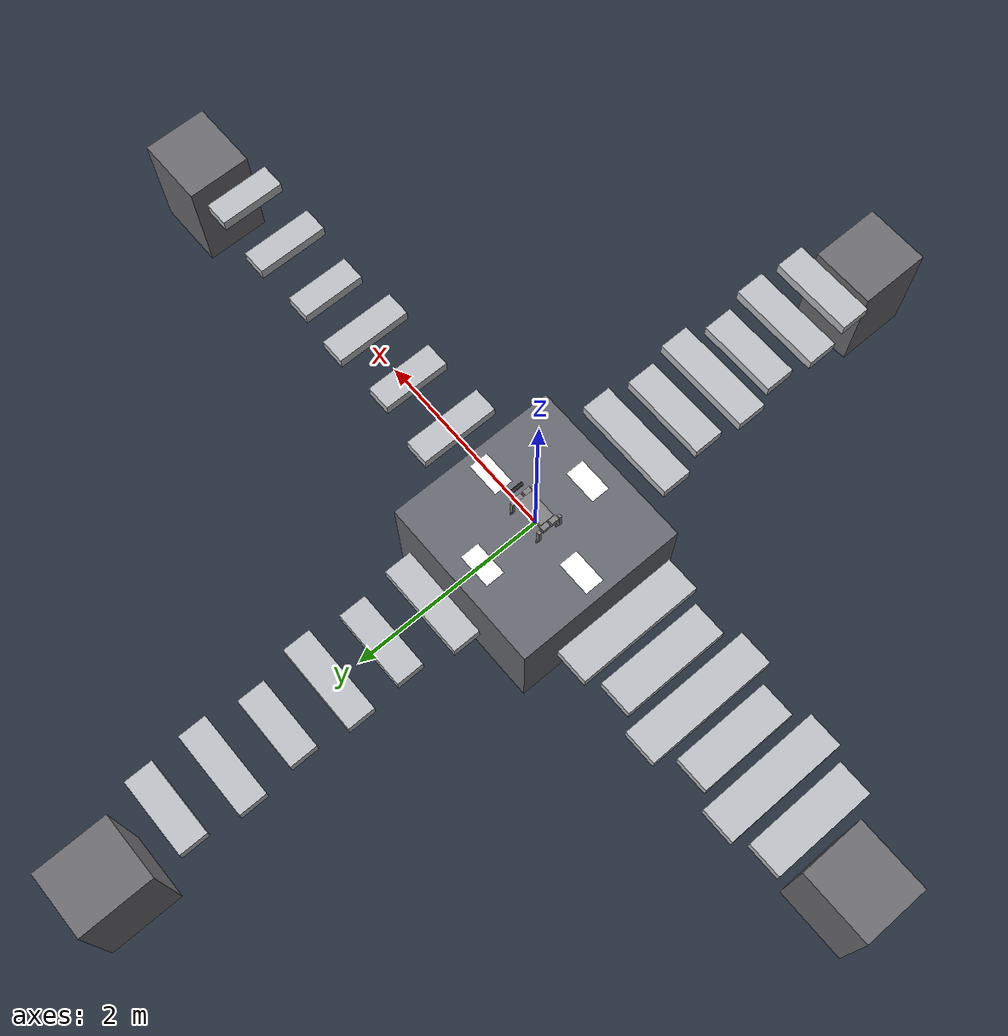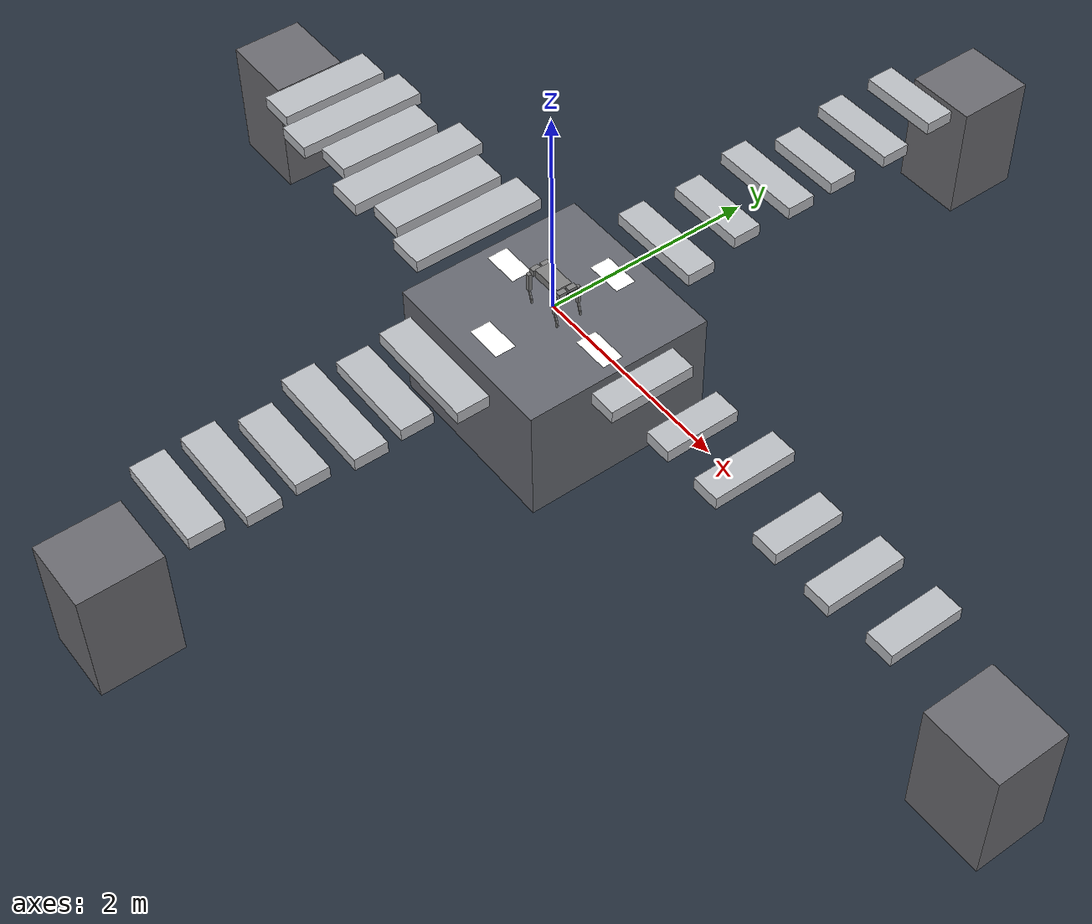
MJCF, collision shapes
<mujoco model="air_beams_cross_1_4_7_10">
  <include file="dog_502.xml"/>
  <!-- Terrain: Cross Air Beams.
       Difficulty changes beam length, spacing, width, and height, following
       the gym-side air_beams trend. -->
  <statistic center="0 0 0.18" extent="1.0" />
  <visual>
    <headlight diffuse="0.6 0.6 0.6" ambient="0.3 0.3 0.3" specular="0 0 0" />
    <rgba haze="0.15 0.25 0.35 1" />
    <global azimuth="-130" elevation="-20" />
  </visual>
  <asset>
    <texture type="skybox" builtin="gradient" rgb1="0.3 0.5 0.7" rgb2="0 0 0" width="512" height="3072" />
    <texture type="2d" name="groundplane" builtin="checker" mark="edge" rgb1="0.18 0.22 0.28" rgb2="0.10 0.14 0.18" markrgb="0.8 0.8 0.8" width="300" height="300" />
    <material name="groundplane" texture="groundplane" texuniform="true" texrepeat="5 5" reflectance="0.0" />
    <texture name="tex_label_1" type="2d" file="./imgs/label_1.png" />
    <material name="mat_label_1" texture="tex_label_1" specular="0" shininess="0" emission="1" texrepeat="1 1" rgba="1 1 1 1" />
    <texture name="tex_label_7" type="2d" file="./imgs/label_7.png" />
    <material name="mat_label_7" texture="tex_label_7" specular="0" shininess="0" emission="1" texrepeat="1 1" rgba="1 1 1 1" />
    <texture name="tex_label_10" type="2d" file="./imgs/label_10.png" />
    <material name="mat_label_10" texture="tex_label_10" specular="0" shininess="0" emission="1" texrepeat="1 1" rgba="1 1 1 1" />
    <texture name="tex_label_4" type="2d" file="./imgs/label_4.png" />
    <material name="mat_label_4" texture="tex_label_4" specular="0" shininess="0" emission="1" texrepeat="1 1" rgba="1 1 1 1" />
  </asset>
  <worldbody>
    <light pos="0 0 1.5" dir="0 0 -1" directional="true" />

    <geom name="pit_floor" pos="0 0 -1.25" size="20 20 0.10" type="box" material="groundplane" />
    <geom name="hub" pos="0 0 -0.60" type="box" size="0.90 0.90 0.60" rgba="0.40 0.41 0.44 1" />

    <!-- neg_x direction, level 1, difficulty=0.1, air_beams -->
    <geom name="neg_x_beam_1" pos="-1.225 0 0.02" type="box" size="0.175 0.65 0.06" rgba="0.73 0.74 0.76 1" />
    <geom name="neg_x_beam_2" pos="-1.675 0 0.02" type="box" size="0.175 0.55 0.06" rgba="0.73 0.74 0.76 1" />
    <geom name="neg_x_beam_3" pos="-2.125 0 0.02" type="box" size="0.175 0.675 0.06" rgba="0.73 0.74 0.76 1" />
    <geom name="neg_x_beam_4" pos="-2.575 0 0.02" type="box" size="0.175 0.5 0.06" rgba="0.73 0.74 0.76 1" />
    <geom name="neg_x_beam_5" pos="-3.025 0 0.02" type="box" size="0.175 0.625 0.06" rgba="0.73 0.74 0.76 1" />
    <geom name="neg_x_beam_6" pos="-3.475 0 0.02" type="box" size="0.175 0.525 0.06" rgba="0.73 0.74 0.76 1" />
    <geom name="neg_x_landing" pos="-4.125 0 -0.6" type="box" size="0.375 0.34 0.6" rgba="0.42 0.42 0.44 1" />
    <geom name="neg_x_label" pos="-0.62 0 0.002" type="box" size="0.18 0.10 0.0001" contype="0" conaffinity="0" group="1" material="mat_label_1" rgba="1 1 1 1" />

    <!-- pos_y direction, level 7, difficulty=0.7, air_beams -->
    <geom name="pos_y_beam_1" pos="0 1.19 0.04" type="box" size="0.475 0.14 0.06" rgba="0.73 0.74 0.76 1" />
    <geom name="pos_y_beam_2" pos="0 1.75 0.09" type="box" size="0.4 0.14 0.06" rgba="0.73 0.74 0.76 1" />
    <geom name="pos_y_beam_3" pos="0 2.31 0.15" type="box" size="0.45 0.14 0.06" rgba="0.73 0.74 0.76 1" />
    <geom name="pos_y_beam_4" pos="0 2.87 0.07" type="box" size="0.37 0.14 0.06" rgba="0.73 0.74 0.76 1" />
    <geom name="pos_y_beam_5" pos="0 3.43 0.12" type="box" size="0.43 0.14 0.06" rgba="0.73 0.74 0.76 1" />
    <geom name="pos_y_beam_6" pos="0 3.99 0.18" type="box" size="0.39 0.14 0.06" rgba="0.73 0.74 0.76 1" />
    <geom name="pos_y_landing" pos="0 4.785 -0.6" type="box" size="0.34 0.375 0.6" rgba="0.42 0.42 0.44 1" />
    <geom name="pos_y_label" pos="0 0.62 0.002" type="box" size="0.10 0.18 0.0001" quat="0.7071067811865476 0 0 0.7071067811865475" contype="0" conaffinity="0" group="1" material="mat_label_7" rgba="1 1 1 1" />

    <!-- pos_x direction, level 10, difficulty=0.9, air_beams -->
    <geom name="pos_x_beam_1" pos="1.18 0 0.06" type="box" size="0.13 0.41 0.06" rgba="0.73 0.74 0.76 1" />
    <geom name="pos_x_beam_2" pos="1.8 0 0.12" type="box" size="0.13 0.35 0.06" rgba="0.73 0.74 0.76 1" />
    <geom name="pos_x_beam_3" pos="2.42 0 0.18" type="box" size="0.13 0.39 0.06" rgba="0.73 0.74 0.76 1" />
    <geom name="pos_x_beam_4" pos="3.04 0 0.09" type="box" size="0.13 0.33 0.06" rgba="0.73 0.74 0.76 1" />
    <geom name="pos_x_beam_5" pos="3.66 0 0.15" type="box" size="0.13 0.37 0.06" rgba="0.73 0.74 0.76 1" />
    <geom name="pos_x_beam_6" pos="4.28 0 0.21" type="box" size="0.13 0.34 0.06" rgba="0.73 0.74 0.76 1" />
    <geom name="pos_x_landing" pos="5.145 0 -0.6" type="box" size="0.375 0.34 0.6" rgba="0.42 0.42 0.44 1" />
    <geom name="pos_x_label" pos="0.62 0 0.002" type="box" size="0.18 0.10 0.0001" contype="0" conaffinity="0" group="1" material="mat_label_10" rgba="1 1 1 1" />

    <!-- neg_y direction, level 4, difficulty=0.4, air_beams -->
    <geom name="neg_y_beam_1" pos="0 -1.205 0.02" type="box" size="0.55 0.155 0.06" rgba="0.73 0.74 0.76 1" />
    <geom name="neg_y_beam_2" pos="0 -1.675 0.06" type="box" size="0.46 0.155 0.06" rgba="0.73 0.74 0.76 1" />
    <geom name="neg_y_beam_3" pos="0 -2.145 0.1" type="box" size="0.525 0.155 0.06" rgba="0.73 0.74 0.76 1" />
    <geom name="neg_y_beam_4" pos="0 -2.615 0.04" type="box" size="0.42 0.155 0.06" rgba="0.73 0.74 0.76 1" />
    <geom name="neg_y_beam_5" pos="0 -3.085 0.08" type="box" size="0.49 0.155 0.06" rgba="0.73 0.74 0.76 1" />
    <geom name="neg_y_beam_6" pos="0 -3.555 0.12" type="box" size="0.44 0.155 0.06" rgba="0.73 0.74 0.76 1" />
    <geom name="neg_y_landing" pos="0 -4.245 -0.6" type="box" size="0.34 0.375 0.6" rgba="0.42 0.42 0.44 1" />
    <geom name="neg_y_label" pos="0 -0.62 0.002" type="box" size="0.10 0.18 0.0001" quat="0.7071067811865476 0 0 -0.7071067811865475" contype="0" conaffinity="0" group="1" material="mat_label_4" rgba="1 1 1 1" />
  </worldbody>
</mujoco>

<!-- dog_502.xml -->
<mujoco model="dog_502_description">
  <compiler angle="radian" meshdir="../../../dog_502_description/meshes"/>

  <default>
    <joint damping="0.01" armature="0.01" frictionloss="0.02"/>
    <geom condim="3" friction="0.8 0.02 0.01"/>
    <default class="visual">
      <geom type="mesh" contype="0" conaffinity="0" group="2"/>
    </default>
  </default>

  <asset>
    <material name="light_grey" rgba="0.75294 0.75294 0.75294 1"/>
    <material name="black" rgba="0.1 0.1 0.1 1"/>
    <material name="red" rgba="1.0 0.0 0.0 1"/>

    <mesh name="base_link_mesh" file="base_link.STL"/>
    <mesh name="FL_hip_mesh" file="FL_hip.STL"/>
    <mesh name="FR_hip_mesh" file="FR_hip.STL"/>
    <mesh name="RL_hip_mesh" file="RL_hip.STL"/>
    <mesh name="RR_hip_mesh" file="RR_hip.STL"/>
    <mesh name="FL_thigh_mesh" file="FL_thigh.STL"/>
    <mesh name="FR_thigh_mesh" file="FR_thigh.STL"/>
    <mesh name="RL_thigh_mesh" file="RL_thigh.STL"/>
    <mesh name="RR_thigh_mesh" file="RR_thigh.STL"/>
    <mesh name="FL_calf_mesh" file="FL_calf.STL"/>
    <mesh name="FR_calf_mesh" file="FR_calf.STL"/>
    <mesh name="RL_calf_mesh" file="RL_calf.STL"/>
    <mesh name="RR_calf_mesh" file="RR_calf.STL"/>
  </asset>

  <worldbody>
    <body name="base" pos="0 0 0.31">
      <inertial pos="0.000037 0.001297 -0.002295" mass="4.142449" diaginertia="0.013374 0.031506 0.039388"/>
      <freejoint name="root"/>
      <geom mesh="base_link_mesh" material="light_grey" class="visual"/>
      <geom name="base_collision" type="box" size="0.15 0.075 0.04"/>

      <body name="camera" pos="0.255 0 0.04185" quat="0.984811 0 0.173672 0">
        <geom name="camera_visual" type="box" size="0.0125 0.06 0.0145" material="black" contype="0" conaffinity="0" group="2"/>
      </body>

      <body name="FL_hip" pos="0.1767 0.05 0">
        <inertial pos="-0.00457081 -0.00969999 0.0002578" mass="0.50149755" diaginertia="0.00011158 0.00021376 0.00016301"/>
        <joint name="FL_hip_joint" axis="1 0 0" range="-0.837758 0.837758" actuatorfrcrange="-17 17"/>
        <geom mesh="FL_hip_mesh" material="light_grey" class="visual"/>
        <geom name="FL_hip_collision" type="box" size="0.025 0.04 0.03"/>
        <body name="FL_thigh" pos="0 0.0684 0">
          <inertial pos="-0.00194747 -0.02547458 -0.01388663" mass="0.64867804" diaginertia="0.00138293 0.00137329 0.00032193"/>
          <joint name="FL_thigh_joint" axis="0 1 0" range="-1.5708 3.49066" actuatorfrcrange="-17 17"/>
          <geom mesh="FL_thigh_mesh" material="light_grey" class="visual"/>
          <geom name="FL_thigh_collision" type="box" pos="0 0 -0.09" quat="0.707107 0 0.707107 0" size="0.09 0.015 0.0175"/>
          <body name="FL_calf" pos="0 0 -0.18">
            <inertial pos="0.01310003 -0.00009903 -0.09935467" mass="0.06024443" diaginertia="0.0003599 0.00036988 0.00001166"/>
            <joint name="FL_calf_joint" axis="0 1 0" range="-2.72271 -0.837758" actuatorfrcrange="-17 17"/>
            <geom mesh="FL_calf_mesh" material="light_grey" class="visual"/>
            <geom name="FL_calf_collision_0" type="box" pos="0.013 0 -0.053" quat="0.988392 0 -0.151909 0" size="0.00825 0.0075 0.05106"/>
            <geom name="FL_calf_collision_1" type="box" pos="0.0285 0 -0.119" quat="0.997889 0 -0.064954 0" size="0.009 0.0075 0.03"/>
            <geom name="FL_calf_collision_2" type="box" pos="0.02021 0 -0.15878" quat="0.968912 0 0.247404 0" size="0.0125 0.0075 0.02"/>
            <geom name="FL_calf_collision_3" type="box" pos="0.03 0 -0.16" quat="0.998750 0 0.049979 0" size="0.01 0.0075 0.015"/>
            <body name="FL_foot" pos="0 0 -0.18">
              <inertial pos="0 0 0" mass="0.04" diaginertia="0.0000096 0.0000096 0.0000096"/>
              <geom name="FL_foot_visual" type="sphere" size="0.01" material="red" contype="0" conaffinity="0" group="2"/>
              <geom name="FL_foot_collision" type="sphere" pos="0.015 0 0" size="0.0225"/>
            </body>
          </body>
        </body>
      </body>

      <body name="FR_hip" pos="0.1767 -0.05 0">
        <inertial pos="-0.00444412 0.00969999 0.00054368" mass="0.50149755" diaginertia="0.00011122 0.00021421 0.00016383"/>
        <joint name="FR_hip_joint" axis="1 0 0" range="-0.837758 0.837758" actuatorfrcrange="-17 17"/>
        <geom mesh="FR_hip_mesh" material="light_grey" class="visual"/>
        <geom name="FR_hip_collision" type="box" size="0.025 0.04 0.03"/>
        <body name="FR_thigh" pos="0 -0.0684 0">
          <inertial pos="-0.00096707 0.02548196 -0.01388686" mass="0.64867934" diaginertia="0.00138275 0.00137516 0.00032358"/>
          <joint name="FR_thigh_joint" axis="0 1 0" range="-1.5708 3.49066" actuatorfrcrange="-17 17"/>
          <geom mesh="FR_thigh_mesh" material="light_grey" class="visual"/>
          <geom name="FR_thigh_collision" type="box" pos="0 0 -0.09" quat="0.707107 0 0.707107 0" size="0.09 0.015 0.0175"/>
          <body name="FR_calf" pos="0 0 -0.18">
            <inertial pos="0.01310003 0.00010097 -0.09935467" mass="0.06024443" diaginertia="0.0003599 0.00036988 0.00001166"/>
            <joint name="FR_calf_joint" axis="0 1 0" range="-2.72271 -0.837758" actuatorfrcrange="-17 17"/>
            <geom mesh="FR_calf_mesh" material="light_grey" class="visual"/>
            <geom name="FR_calf_collision_0" type="box" pos="0.013 0 -0.053" quat="0.988392 0 -0.151909 0" size="0.00825 0.0075 0.05106"/>
            <geom name="FR_calf_collision_1" type="box" pos="0.0285 0 -0.119" quat="0.997889 0 -0.064954 0" size="0.009 0.0075 0.03"/>
            <geom name="FR_calf_collision_2" type="box" pos="0.02021 0 -0.15878" quat="0.968912 0 0.247404 0" size="0.0125 0.0075 0.02"/>
            <geom name="FR_calf_collision_3" type="box" pos="0.03 0 -0.16" quat="0.998750 0 0.049979 0" size="0.01 0.0075 0.015"/>
            <body name="FR_foot" pos="0 0 -0.18">
              <inertial pos="0 0 0" mass="0.04" diaginertia="0.0000096 0.0000096 0.0000096"/>
              <geom name="FR_foot_visual" type="sphere" size="0.01" material="red" contype="0" conaffinity="0" group="2"/>
              <geom name="FR_foot_collision" type="sphere" pos="0.015 0 0" size="0.0225"/>
            </body>
          </body>
        </body>
      </body>

      <body name="RL_hip" pos="-0.1767 0.05 0">
        <inertial pos="0.00329874 -0.00969999 0.00094432" mass="0.50149755" diaginertia="0.00011271 0.00021836 0.00016649"/>
        <joint name="RL_hip_joint" axis="1 0 0" range="-0.837758 0.837758" actuatorfrcrange="-17 17"/>
        <geom mesh="RL_hip_mesh" material="light_grey" class="visual"/>
        <geom name="RL_hip_collision" type="box" size="0.025 0.04 0.03"/>
        <body name="RL_thigh" pos="0 0.0684 0">
          <inertial pos="-0.00120536 -0.02547458 -0.01523822" mass="0.64867804" diaginertia="0.00135600 0.00134928 0.00032485"/>
          <joint name="RL_thigh_joint" axis="0 1 0" range="-1.5708 3.49066" actuatorfrcrange="-17 17"/>
          <geom mesh="RL_thigh_mesh" material="light_grey" class="visual"/>
          <geom name="RL_thigh_collision" type="box" pos="0 0 -0.09" quat="0.707107 0 0.707107 0" size="0.09 0.015 0.0175"/>
          <body name="RL_calf" pos="0 0 -0.18">
            <inertial pos="0.01310003 -0.00009903 -0.09935467" mass="0.06024443" diaginertia="0.0003599 0.00036988 0.00001166"/>
            <joint name="RL_calf_joint" axis="0 1 0" range="-2.72271 -0.837758" actuatorfrcrange="-17 17"/>
            <geom mesh="RL_calf_mesh" material="light_grey" class="visual"/>
            <geom name="RL_calf_collision_0" type="box" pos="0.013 0 -0.053" quat="0.988392 0 -0.151909 0" size="0.00825 0.0075 0.05106"/>
            <geom name="RL_calf_collision_1" type="box" pos="0.0285 0 -0.119" quat="0.997889 0 -0.064954 0" size="0.009 0.0075 0.03"/>
            <geom name="RL_calf_collision_2" type="box" pos="0.02021 0 -0.15878" quat="0.968912 0 0.247404 0" size="0.0125 0.0075 0.02"/>
            <geom name="RL_calf_collision_3" type="box" pos="0.03 0 -0.16" quat="0.998750 0 0.049979 0" size="0.01 0.0075 0.015"/>
            <body name="RL_foot" pos="0 0 -0.18">
              <inertial pos="0 0 0" mass="0.04" diaginertia="0.0000096 0.0000096 0.0000096"/>
              <geom name="RL_foot_visual" type="sphere" size="0.01" material="red" contype="0" conaffinity="0" group="2"/>
              <geom name="RL_foot_collision" type="sphere" pos="0.015 0 0" size="0.0225"/>
            </body>
          </body>
        </body>
      </body>

      <body name="RR_hip" pos="-0.1767 -0.05 0">
        <inertial pos="0.00444412 0.00969999 -0.00054368" mass="0.50149755" diaginertia="0.00011122 0.00021421 0.00016383"/>
        <joint name="RR_hip_joint" axis="1 0 0" range="-0.837758 0.837758" actuatorfrcrange="-17 17"/>
        <geom mesh="RR_hip_mesh" material="light_grey" class="visual"/>
        <geom name="RR_hip_collision" type="box" size="0.025 0.04 0.03"/>
        <body name="RR_thigh" pos="0 -0.0684 0">
          <inertial pos="-0.00212669 0.02547451 -0.01490311" mass="0.64867934" diaginertia="0.00136777 0.00135386 0.00031766"/>
          <joint name="RR_thigh_joint" axis="0 1 0" range="-1.5708 3.49066" actuatorfrcrange="-17 17"/>
          <geom mesh="RR_thigh_mesh" material="light_grey" class="visual"/>
          <geom name="RR_thigh_collision" type="box" pos="0 0 -0.09" quat="0.707107 0 0.707107 0" size="0.09 0.015 0.0175"/>
          <body name="RR_calf" pos="0 0 -0.18">
            <inertial pos="0.01310003 0.00010097 -0.09935467" mass="0.06024443" diaginertia="0.0003599 0.00036988 0.00001166"/>
            <joint name="RR_calf_joint" axis="0 1 0" range="-2.72271 -0.837758" actuatorfrcrange="-17 17"/>
            <geom mesh="RR_calf_mesh" material="light_grey" class="visual"/>
            <geom name="RR_calf_collision_0" type="box" pos="0.013 0 -0.053" quat="0.988392 0 -0.151909 0" size="0.00825 0.0075 0.05106"/>
            <geom name="RR_calf_collision_1" type="box" pos="0.0285 0 -0.119" quat="0.997889 0 -0.064954 0" size="0.009 0.0075 0.03"/>
            <geom name="RR_calf_collision_2" type="box" pos="0.02021 0 -0.15878" quat="0.968912 0 0.247404 0" size="0.0125 0.0075 0.02"/>
            <geom name="RR_calf_collision_3" type="box" pos="0.03 0 -0.16" quat="0.998750 0 0.049979 0" size="0.01 0.0075 0.015"/>
            <body name="RR_foot" pos="0 0 -0.18">
              <inertial pos="0 0 0" mass="0.04" diaginertia="0.0000096 0.0000096 0.0000096"/>
              <geom name="RR_foot_visual" type="sphere" size="0.01" material="red" contype="0" conaffinity="0" group="2"/>
              <geom name="RR_foot_collision" type="sphere" pos="0.015 0 0" size="0.0225"/>
            </body>
          </body>
        </body>
      </body>
    </body>
  </worldbody>

  <actuator>
    <motor name="FL_hip" joint="FL_hip_joint" ctrllimited="true" ctrlrange="-17 17"/>
    <motor name="FL_thigh" joint="FL_thigh_joint" ctrllimited="true" ctrlrange="-17 17"/>
    <motor name="FL_calf" joint="FL_calf_joint" ctrllimited="true" ctrlrange="-17 17"/>
    <motor name="FR_hip" joint="FR_hip_joint" ctrllimited="true" ctrlrange="-17 17"/>
    <motor name="FR_thigh" joint="FR_thigh_joint" ctrllimited="true" ctrlrange="-17 17"/>
    <motor name="FR_calf" joint="FR_calf_joint" ctrllimited="true" ctrlrange="-17 17"/>
    <motor name="RL_hip" joint="RL_hip_joint" ctrllimited="true" ctrlrange="-17 17"/>
    <motor name="RL_thigh" joint="RL_thigh_joint" ctrllimited="true" ctrlrange="-17 17"/>
    <motor name="RL_calf" joint="RL_calf_joint" ctrllimited="true" ctrlrange="-17 17"/>
    <motor name="RR_hip" joint="RR_hip_joint" ctrllimited="true" ctrlrange="-17 17"/>
    <motor name="RR_thigh" joint="RR_thigh_joint" ctrllimited="true" ctrlrange="-17 17"/>
    <motor name="RR_calf" joint="RR_calf_joint" ctrllimited="true" ctrlrange="-17 17"/>
  </actuator>
</mujoco>
